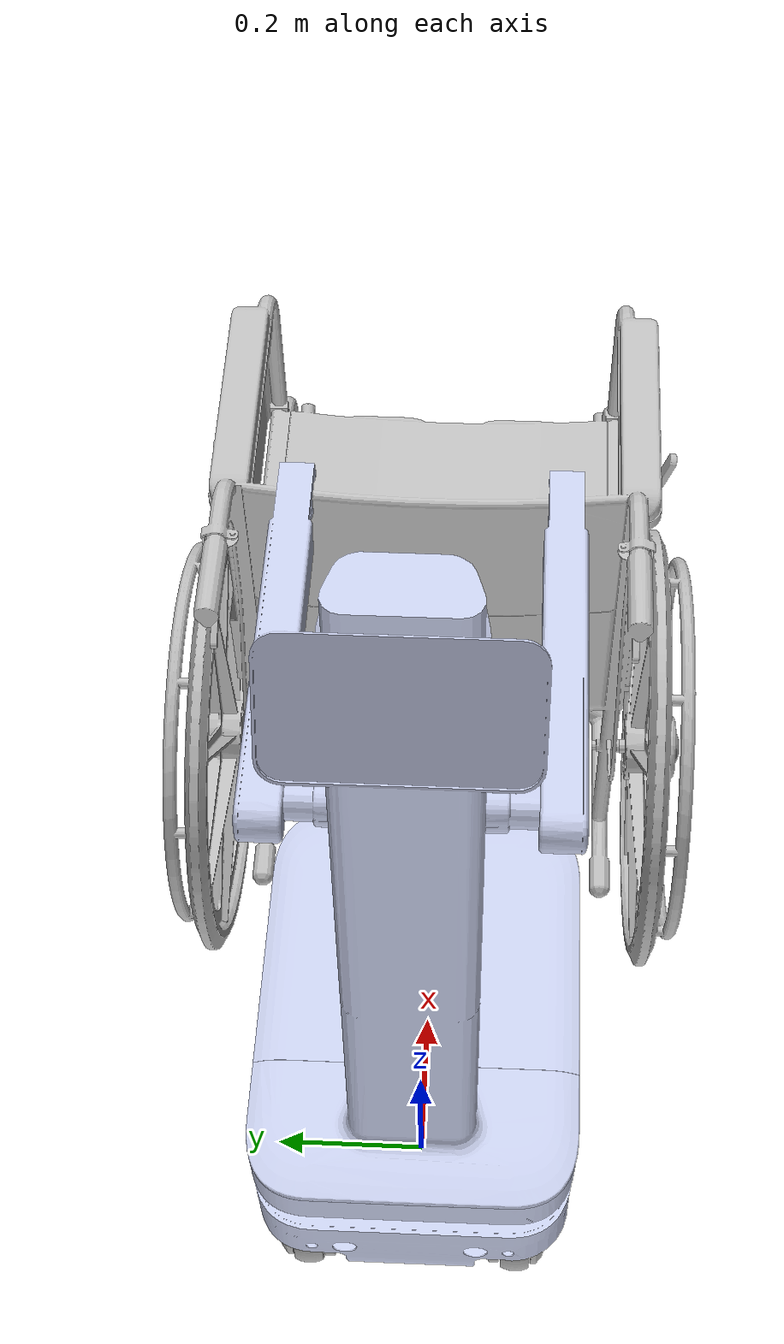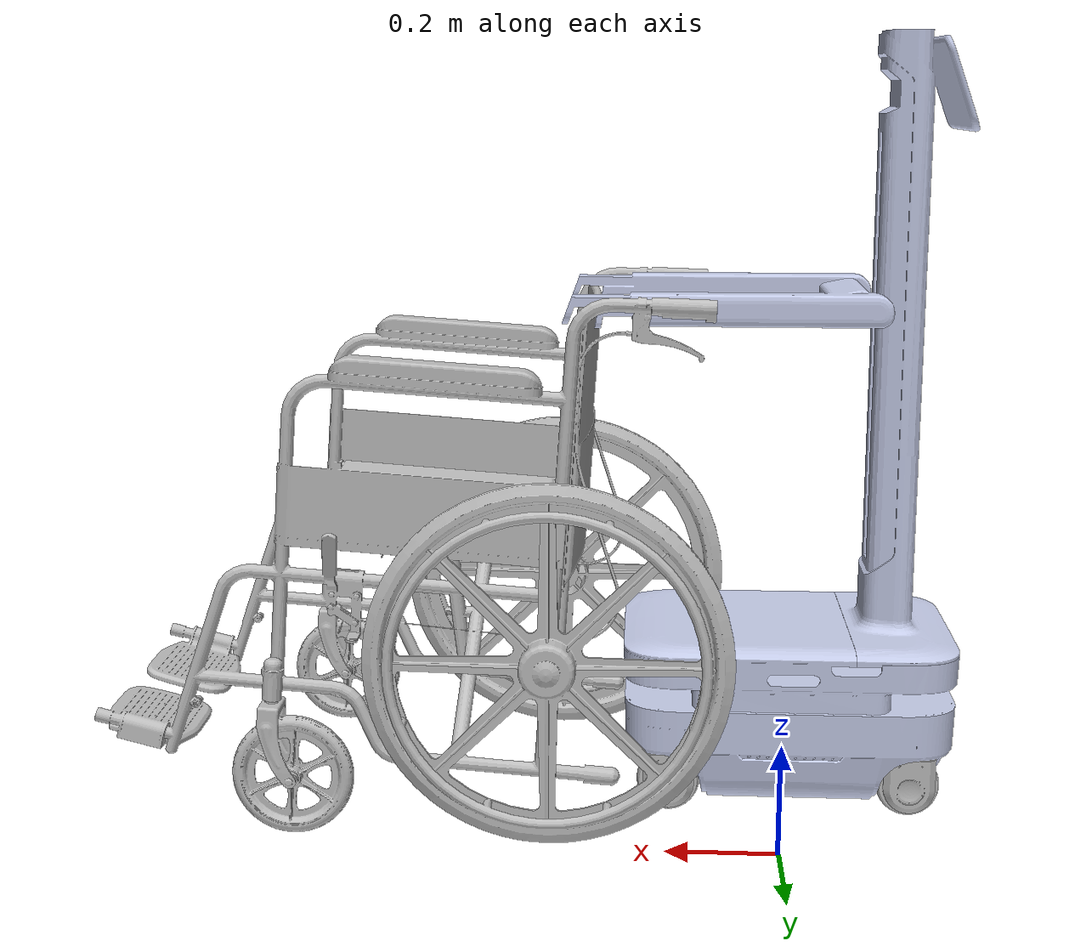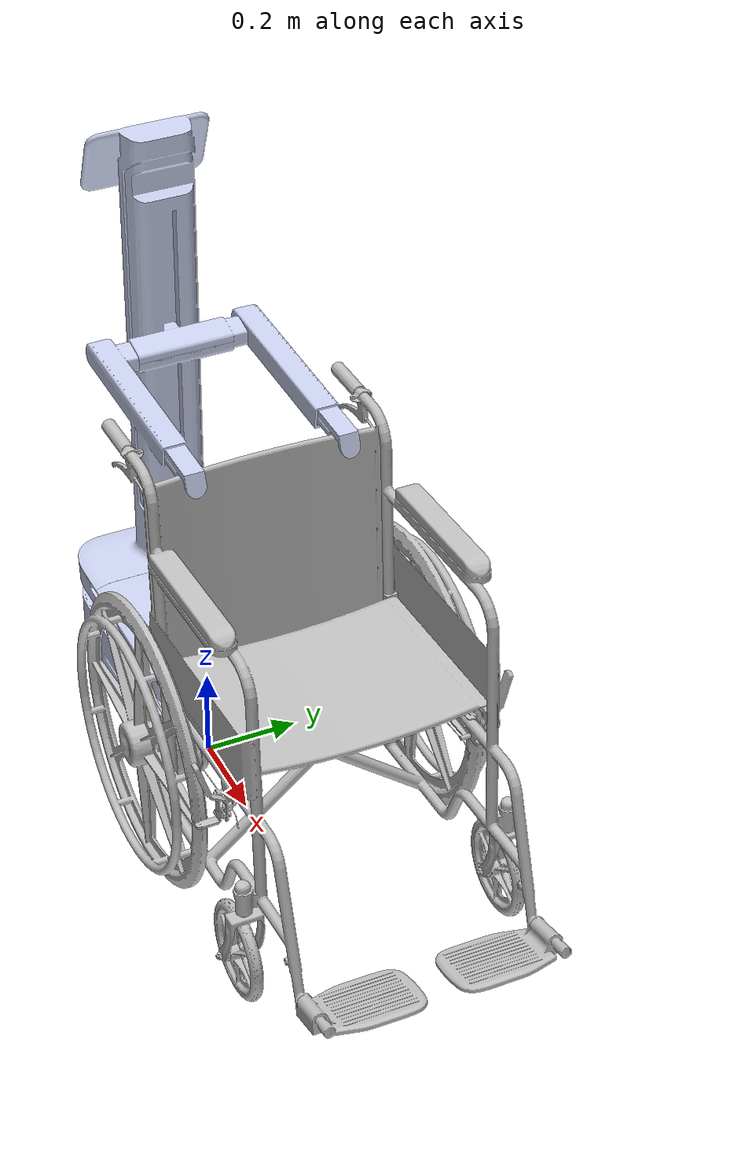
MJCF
<mujoco model="G7_arm_wheelchair">
  <compiler angle="radian" meshdir="meshes"/>

  <default>
      <default class="g7_amr_cart">
          <geom friction="0.4" margin="0.001" condim="1"/>
          <joint damping="0.1" armature="0.01" frictionloss="0.2"/>
          <motor ctrlrange="-23.7 23.7"/>
          <default class="visual">
              <geom type="mesh" contype="0" conaffinity="0" group="2"/>
          </default>
          <default class="rotate">
              <joint axis="0 0 1"/>
              <motor ctrlrange="-23.7 23.7"/>
          </default>
          <default class="collision">
              <geom group="3" type="mesh" rgba="1 0 0 0.3" />
              <default class="wheel">
              <geom priority="1" condim="3"
                  friction="0.8 0.02 0.01"/>
              </default>
              <default class="front_chair_wheel">
                <geom priority="1" condim="3"
                    friction="0.6 0.01 0.002"/>
              </default>
              <default class="rear_chair_wheel">
                <geom priority="1" condim="3"
                    friction="1.0 0.03 0.005"/>
              </default>
          </default>
      </default>
  </default>

  <asset>
    <mesh name="AMR_base_link" file="AMR_base_link.STL"/>
    <mesh name="AMR_collision" file="AMR_collision.stl"/>
    <mesh name="arm_link" file="arm_link.STL"/>
    <mesh name="arm_collision" file="arm_collision.stl"/>
    <mesh name="wheelchair_base_link" file="wheelchair_base_link.STL"/>
    <mesh name="wheelchair_base_link_collision" file="wheelchair_base_link_collision.STL"/>
    <mesh name="wheelchair_FL_link" file="wheelchair_FL_link.STL"/>
    <mesh name="wheelchair_FLW_link" file="wheelchair_FLW_link.STL"/>
    <mesh name="wheelchair_FR_link" file="wheelchair_FR_link.STL"/>
    <mesh name="wheelchair_FRW_link" file="wheelchair_FRW_link.STL"/>
    <mesh name="wheelchair_RLW_link" file="wheelchair_RLW_link.STL"/>
    <mesh name="wheelchair_RRW_link" file="wheelchair_RRW_link.STL"/>
    <mesh name="AMR_FL_link" file="AMR_FL_link.STL"/>
    <mesh name="AMR_FLW_link" file="AMR_FLW_link.STL"/>
    <mesh name="AMR_FR_link" file="AMR_FR_link.STL"/>
    <mesh name="AMR_FRW_link" file="AMR_FRW_link.STL"/>
    <mesh name="AMR_RL_link" file="AMR_RL_link.STL"/>
    <mesh name="AMR_RLW_link" file="AMR_RLW_link.STL"/>
    <mesh name="AMR_RR_link" file="AMR_RR_link.STL"/>
    <mesh name="AMR_RRW_link" file="AMR_RRW_link.STL"/>
  </asset>

  <worldbody>
    <body name="AMR_base_link" pos="0 0 0.3" childclass="g7_amr_cart">
        <inertial pos="0.00551370 0.00325048 0.00318185" quat="1 0 0 0" mass="40.0" diaginertia="0.62303071 0.92096563 1.23411295" />
        <freejoint />
        <site name="imu" pos="0 0 0" />
        <geom type="mesh" contype="0" conaffinity="0" group="1" density="0" rgba="0.792157 0.819608 0.933333 1" mesh="AMR_base_link"/>
        <geom type="mesh" rgba="0.792157 0.819608 0.933333 1" mesh="AMR_collision" class="collision"/>
        <body name="arm_link" >
          <inertial pos="0.03614545 -0.00000317 0.05135422" quat="1 0 0 0" mass="10.0" diaginertia="0.87452839 0.95354388 0.20297959" />
          <geom pos="-0.16139 0 0.54534" quat="1 0 0 0" type="mesh" contype="0" conaffinity="0" group="1" density="0" rgba="0.792157 0.819608 0.933333 1" mesh="arm_link"/>
          <geom pos="-0.00139 0 0.00034" quat="1 0 0 0" type="mesh" rgba="0.792157 0.819608 0.933333 1" mesh="arm_collision" class="collision"/>
        </body>
        <body name="wheelchair_base_link">
          <inertial pos="-0.06158659 -0.00662311 0.07561156" quat="1 0 0 0" mass="60.0" diaginertia="3.82247384 4.10517780 3.68493511" />
          <geom pos="0.56488 0 0.30948" quat="0.999391 0 0 -0.0348994" type="mesh" contype="0" conaffinity="0" group="1" density="0" rgba="0.752941 0.752941 0.752941 1" mesh="wheelchair_base_link"/>
          <geom pos="-0.00652177 -0.000141469 -0.00412" quat="1 0 0 9.35e-05" type="mesh" rgba="0.752941 0.752941 0.752941 1" mesh="wheelchair_base_link_collision" class="collision"/>
        </body>
        <body name="wheelchair_FL_link" pos="0.835102 0.27086 0.05897">
          <inertial pos="-0.0066937 -0.00030195 -0.0352815" quat="0.995822 0.0034289 -0.0899135 0.015591" mass="0.3" diaginertia="0.00144931 0.00129171 0.000220769"/>
          <joint name="wheelchair_FL_J" pos="0 0 0" axis="0.0697563 0 -0.997564"/>
          <geom type="mesh" contype="0" conaffinity="0" group="1" density="0" rgba="0.752941 0.752941 0.752941 1" mesh="wheelchair_FL_link"/>
          <body name="wheelchair_FLW_link" pos="-0.031613 0 -0.12134">
            <inertial pos="0 0 0" quat="0.680193 0.193229 0.193229 0.680193" mass="0.5" diaginertia="0.00297133 0.00151568 0.00151561"/>
            <joint name="wheelchair_FLW_J" pos="0 0 0" axis="0 1 0"/>
            <geom type="mesh" contype="0" conaffinity="0" group="1" density="0" rgba="0.752941 0.752941 0.752941 1" mesh="wheelchair_FLW_link"/>
            <geom size="0.099 0.0125" quat="0.707105 -0.707108 0 0" type="cylinder" rgba="0.752941 0.752941 0.752941 1" class="rear_chair_wheel"/>
          </body>
        </body>
        <body name="wheelchair_FR_link" pos="0.835102 -0.270861 0.0589693" quat="1 0 0 8.50399e-08">
          <inertial pos="-0.00669369 -0.00030196 -0.0352816" quat="0.995822 0.003429 -0.0899128 0.0155901" mass="0.3" diaginertia="0.00144932 0.00129171 0.000220769"/>
          <joint name="wheelchair_FR_J" pos="0 0 0" axis="0.0697565 0 -0.997564"/>
          <geom type="mesh" contype="0" conaffinity="0" group="1" density="0" rgba="0.752941 0.752941 0.752941 1" mesh="wheelchair_FR_link"/>
          <body name="wheelchair_FRW_link" pos="-0.0316127 0 -0.121341">
            <inertial pos="0 0 0" quat="0.680193 0.193229 0.193229 0.680193" mass="0.5" diaginertia="0.00297133 0.00151568 0.00151561"/>
            <joint name="wheelchair_FRW_J" pos="0 0 0" axis="0 1 0"/>
            <geom type="mesh" contype="0" conaffinity="0" group="1" density="0" rgba="0.752941 0.752941 0.752941 1" mesh="wheelchair_FRW_link"/>
            <geom size="0.099 0.0125" quat="0.707105 -0.707108 0 0" type="cylinder" rgba="0.752941 0.752941 0.752941 1" class="rear_chair_wheel"/>
          </body>
        </body>
        <body name="wheelchair_RLW_link" pos="0.391658 0.292411 0.133001" quat="1 0 0 8.50399e-08">
          <inertial pos="1.633e-05 -0.00015277 8.89e-06" quat="0.703651 -0.0698429 -0.0698433 0.703647" mass="1" diaginertia="0.0563838 0.0284545 0.0284521"/>
          <joint name="wheelchair_RLW_J" pos="0 0 0" axis="0 -1 0"/>
          <geom type="mesh" contype="0" conaffinity="0" group="1" density="0" rgba="0.752941 0.752941 0.752941 1" mesh="wheelchair_RLW_link"/>
          <geom size="0.294 0.0295" quat="0.707105 -0.707108 0 0" type="cylinder" rgba="0.752941 0.752941 0.752941 1" class="front_chair_wheel"/>
        </body>
        <body name="wheelchair_RRW_link" pos="0.391658 -0.292411 0.133001" quat="1 0 0 8.50399e-08">
          <inertial pos="1.633e-05 0.00015277 -8.89e-06" quat="0.703647 0.0698438 0.0698424 0.703651" mass="1" diaginertia="0.0563838 0.0284545 0.0284521"/>
          <joint name="wheelchair_RRW_J" pos="0 0 0" axis="0 1 0"/>
          <geom type="mesh" contype="0" conaffinity="0" group="1" density="0" rgba="0.752941 0.752941 0.752941 1" mesh="wheelchair_RRW_link"/>
          <geom size="0.294 0.0295" quat="0.707105 -0.707108 0 0" type="cylinder" rgba="0.752941 0.752941 0.752941 1" class="front_chair_wheel"/>
        </body>
        <body name="AMR_FL_link" pos="0.198 0.13 -0.0566006">
          <inertial pos="0 -0.00166139 -0.0467447" quat="0.999573 0.0292082 0 0" mass="0.3" diaginertia="0.00117646 0.00105926 0.00051373"/>
          <joint name="AMR_FL_J" pos="0 0 0" axis="0 0 -1"/>
          <geom type="mesh" contype="0" conaffinity="0" group="1" density="0" rgba="0.752941 0.752941 0.752941 1" mesh="AMR_FL_link"/>
          <body name="AMR_FLW_link" pos="0 0 -0.0525">
            <inertial pos="0 0 0" quat="0.477021 0.521969 0.521969 0.477021" mass="1" diaginertia="0.00219403 0.00118753 0.00118731"/>
            <joint name="AMR_FLW_J" pos="0 0 0" axis="0 1 0"/>
            <geom type="mesh" contype="0" conaffinity="0" group="1" density="0" rgba="0.752941 0.752941 0.752941 1" mesh="AMR_FLW_link"/>
            <geom size="0.05203 0.018" quat="0.707105 -0.707108 0 0" type="cylinder" rgba="0.752941 0.752941 0.752941 1" class="wheel"/>
          </body>
        </body>
        <body name="AMR_FR_link" pos="0.198 -0.13 -0.0566006">
          <inertial pos="0 0 0" quat="0.999574 -0.0291986 0 0" mass="0.3" diaginertia="0.00117647 0.00105927 0.000513731"/>
          <joint name="AMR_FR_J" pos="0 0 0" axis="0 0 -1"/>
          <geom type="mesh" contype="0" conaffinity="0" group="1" density="0" rgba="0.752941 0.752941 0.752941 1" mesh="AMR_FR_link"/>
          <body name="AMR_FRW_link" pos="0 0 -0.0525">
            <inertial pos="0 0 0" quat="0.521969 0.477021 0.477021 0.521969" mass="1" diaginertia="0.00219403 0.00118753 0.00118731"/>
            <joint name="AMR_FRW_J" pos="0 0 0" axis="0 1 0"/>
            <geom type="mesh" contype="0" conaffinity="0" group="1" density="0" rgba="0.752941 0.752941 0.752941 1" mesh="AMR_FRW_link"/>
            <geom size="0.05203 0.018" quat="0.707105 -0.707108 0 0" type="cylinder" rgba="0.752941 0.752941 0.752941 1" class="wheel"/>
          </body>
        </body>
        <body name="AMR_RL_link" pos="-0.198 0.13 -0.056601">
          <inertial pos="0 0 0" quat="0.999573 0.0292077 0 0" mass="0.3" diaginertia="0.00117647 0.00105927 0.00051373"/>
          <joint name="AMR_RL_J" pos="0 0 0" axis="0 0 -1"/>
          <geom type="mesh" contype="0" conaffinity="0" group="1" density="0" rgba="0.752941 0.752941 0.752941 1" mesh="AMR_RL_link"/>
          <body name="AMR_RLW_link" pos="0 0 -0.0525">
            <inertial pos="0 0 0" quat="0.477021 0.521969 0.521969 0.477021" mass="1" diaginertia="0.00219403 0.00118753 0.00118731"/>
            <joint name="AMR_RLW_J" pos="0 0 0" axis="0 1 0"/>
            <geom type="mesh" contype="0" conaffinity="0" group="1" density="0" rgba="0.752941 0.752941 0.752941 1" mesh="AMR_RLW_link"/>
            <geom size="0.05203 0.018" quat="0.707105 -0.707108 0 0" type="cylinder" rgba="0.752941 0.752941 0.752941 1" class="wheel"/>
          </body>
        </body>
        <body name="AMR_RR_link" pos="-0.198 -0.13 -0.056601">
          <inertial pos="0 0 0" quat="0.999574 -0.0291991 0 0" mass="0.3" diaginertia="0.00117647 0.00105926 0.000513731"/>
          <joint name="AMR_RR_J" pos="0 0 0" axis="0 0 -1"/>
          <geom type="mesh" contype="0" conaffinity="0" group="1" density="0" rgba="0.752941 0.752941 0.752941 1" mesh="AMR_RR_link"/>
          <body name="AMR_RRW_link" pos="0 0 -0.0525">
            <inertial pos="1.633e-05 0.00015277 -8.89e-06" quat="0.703647 0.0698438 0.0698424 0.703651" mass="1" diaginertia="0.0563838 0.0284545 0.0284521"/>
            <joint name="AMR_RRW_J" pos="0 0 0" axis="0 1 0"/>
            <geom type="mesh" contype="0" conaffinity="0" group="1" density="0" rgba="0.752941 0.752941 0.752941 1" mesh="AMR_RRW_link"/>
            <geom size="0.05203 0.018" quat="0.707105 -0.707108 0 0" type="cylinder" rgba="0.752941 0.752941 0.752941 1" class="wheel"/>
          </body>
        </body>
    </body>
  </worldbody>

  <actuator>
    <motor class="rotate" name="FL_motor" joint="AMR_FL_J" />
    <motor class="rotate" name="FR_motor" joint="AMR_FR_J" />
    <motor class="rotate" name="RL_motor" joint="AMR_RL_J" />
    <motor class="rotate" name="RR_motor" joint="AMR_RR_J" />

    <motor ctrlrange="-15 15" name="FL_wheel" joint="AMR_FLW_J" />
    <motor ctrlrange="-15 15" name="FR_wheel" joint="AMR_FRW_J" />
    <motor ctrlrange="-15 15" name="RL_wheel" joint="AMR_RLW_J" />
    <motor ctrlrange="-15 15" name="RR_wheel" joint="AMR_RRW_J" />
  </actuator>

  <sensor>
    <jointpos name="FL_Z_pos" joint="AMR_FL_J" />
    <jointpos name="FR_Z_pos" joint="AMR_FR_J" />
    <jointpos name="RL_Z_pos" joint="AMR_RL_J" />
    <jointpos name="RR_Z_pos" joint="AMR_RR_J" />

    <jointpos name="FL_Y_pos" joint="AMR_FLW_J" />
    <jointpos name="FR_Y_pos" joint="AMR_FRW_J" />
    <jointpos name="RL_Y_pos" joint="AMR_RLW_J" />
    <jointpos name="RR_Y_pos" joint="AMR_RRW_J" />

    <jointvel name="FL_Z_vel" joint="AMR_FL_J" />
    <jointvel name="FR_Z_vel" joint="AMR_FR_J" />
    <jointvel name="RL_Z_vel" joint="AMR_RL_J" />
    <jointvel name="RR_Z_vel" joint="AMR_RR_J" />

    <jointvel name="FL_Y_vel" joint="AMR_FLW_J" />
    <jointvel name="FR_Y_vel" joint="AMR_FRW_J" />
    <jointvel name="RL_Y_vel" joint="AMR_RLW_J" />
    <jointvel name="RR_Y_vel" joint="AMR_RRW_J" />

    <jointactuatorfrc name="FL_Z_torque" joint="AMR_FL_J" />
    <jointactuatorfrc name="FR_Z_torque" joint="AMR_FR_J" />
    <jointactuatorfrc name="RL_Z_torque" joint="AMR_RL_J" />
    <jointactuatorfrc name="RR_Z_torque" joint="AMR_RR_J" />

    <jointactuatorfrc name="FL_Y_torque" joint="AMR_FLW_J" noise="0.01"/>
    <jointactuatorfrc name="FR_Y_torque" joint="AMR_FRW_J" noise="0.01"/>
    <jointactuatorfrc name="RL_Y_torque" joint="AMR_RLW_J" noise="0.01"/>
    <jointactuatorfrc name="RR_Y_torque" joint="AMR_RRW_J" noise="0.01"/>

    <framequat name="imu_quat" objtype="site" objname="imu" noise="0.0"/>
    <gyro name="imu_gyro" site="imu" noise="0.0"/>
    <accelerometer name="imu_acc" site="imu" />

    <framepos name="frame_pos" objtype="site" objname="imu" />
    <framelinvel name="frame_lin_vel" objtype="site" objname="imu" />
    <frameangvel name="frame_ang_vel" objtype="site" objname="imu" />
  </sensor>
</mujoco>
